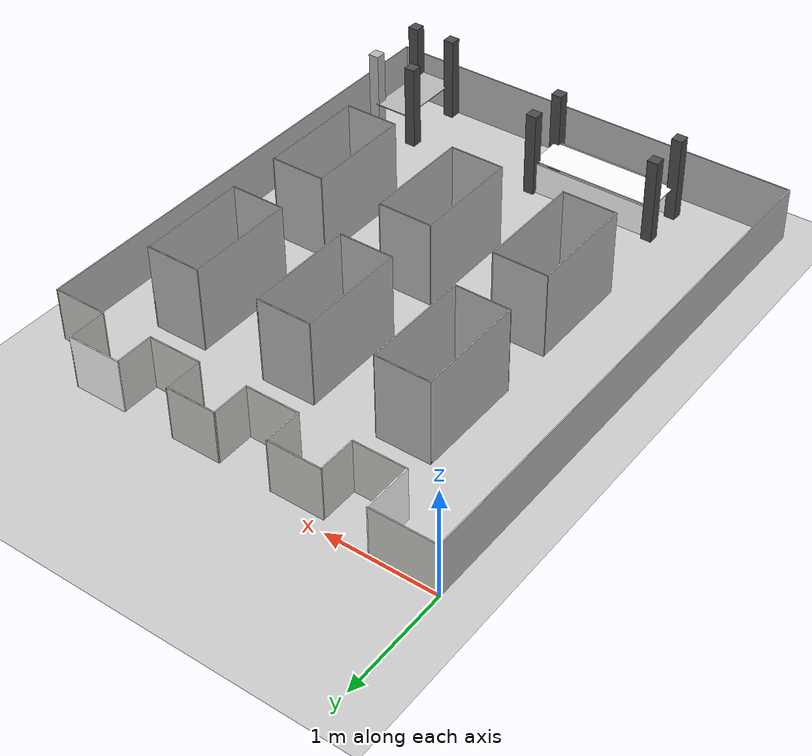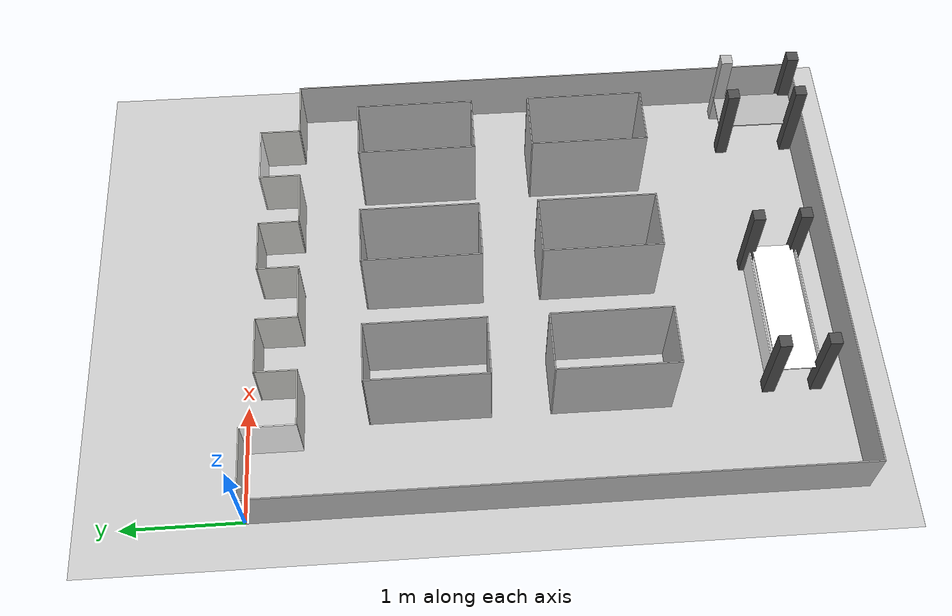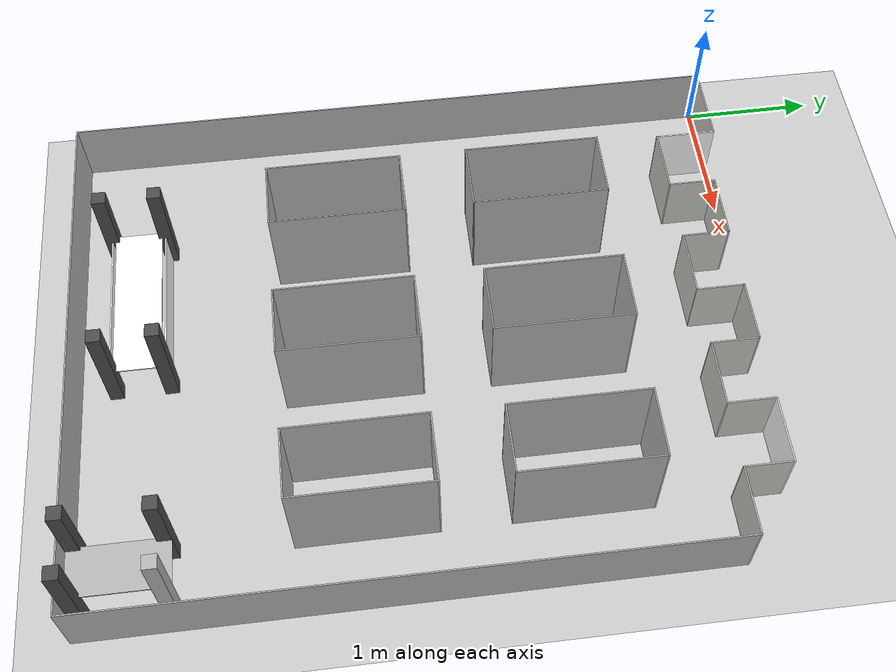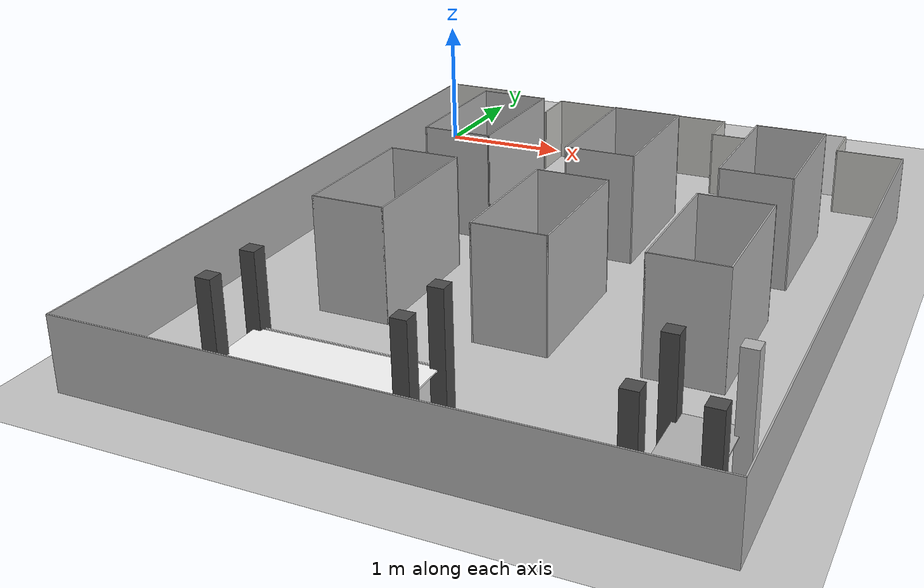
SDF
<?xml version="1.0" encoding="UTF-8"?>
<sdf version='1.4'>
  <world name='default'>
    <!-- A global light source -->
    <include>
      <uri>model://sun</uri>
    </include>

    <!-- A ground plane -->
    <include>
      <uri>model://ground_plane</uri>
    </include>

    <physics type="ode">
      <real_time_update_rate>1000.0</real_time_update_rate>
      <max_step_size>0.001</max_step_size>
      <real_time_factor>1</real_time_factor>
      <ode>
        <solver>
          <type>quick</type>
          <iters>150</iters>
          <precon_iters>0</precon_iters>
          <sor>1.400000</sor>
          <use_dynamic_moi_rescaling>1</use_dynamic_moi_rescaling>
        </solver>
        <constraints>
          <cfm>0.00001</cfm>
          <erp>0.2</erp>
          <contact_max_correcting_vel>2000.000000</contact_max_correcting_vel>
          <contact_surface_layer>0.01000</contact_surface_layer>
        </constraints>
      </ode>
    </physics>

    <!-- Load world -->
    <include>
      <uri>model://tgw_arena</uri>
    </include>

    <scene>
      <ambient>0.5 0.5 0.5 1</ambient>
      <background>0.5 0.5 0.5 1</background>
      <shadows>false</shadows>
    </scene>

    <gui fullscreen='0'>
      <camera name='user_camera'>
        <pose>0.8 0.0 12.0 0 1.5708 0</pose>
        <view_controller>orbit</view_controller>
      </camera>
    </gui>
  </world>
</sdf>

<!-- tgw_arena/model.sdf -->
<sdf version='1.6'>
  <model name='tgw_arena'>
    <pose frame=''>2.03 -2.53248 0 0 -0 0</pose>
    <link name='Wall_20'>
      <collision name='Wall_20_Collision'>
        <geometry>
          <box>
            <size>5.005 0.01 0.5</size>
          </box>
        </geometry>
        <pose frame=''>0 0 0.25 0 -0 0</pose>
      </collision>
      <visual name='Wall_20_Visual'>
        <cast_shadows>false</cast_shadows>
        <pose frame=''>0 0 0.25 0 -0 0</pose>
        <geometry>
          <box>
            <size>5.005 0.01 0.5</size>
          </box>
        </geometry>
        <material>
          <script>
            <uri>model://tgw_arena/materials/scripts</uri>
            <uri>model://tgw_arena/materials/textures</uri>
            <name>tgw_logo</name>
          </script>
        </material>
        <meta>
          <layer>0</layer>
        </meta>
      </visual>
      <pose frame=''>-2.03 0.034982 0 0 -0 -1.5708</pose>
    </link>
    <link name='Wall_27'>
      <collision name='Wall_27_Collision'>
        <geometry>
          <box>
            <size>4 0.01 0.5</size>
          </box>
        </geometry>
        <pose frame=''>0 0 0.25 0 -0 0</pose>
      </collision>
      <visual name='Wall_27_Visual'>
        <cast_shadows>false</cast_shadows>
        <pose frame=''>0 0 0.25 0 -0 0</pose>
        <geometry>
          <box>
            <size>4 0.01 0.5</size>
          </box>
        </geometry>
        <material>
          <script>
            <uri>model://tgw_arena/materials/scripts</uri>
            <uri>model://tgw_arena/materials/textures</uri>
            <name>tgw_logo</name>
          </script>
        </material>
        <meta>
          <layer>0</layer>
        </meta>
      </visual>
      <pose frame=''>-0.035 -2.46252 0 0 -0 0</pose>
    </link>
    <link name='Wall_29'>
      <collision name='Wall_29_Collision'>
        <geometry>
          <box>
            <size>4.551 0.01 0.5</size>
          </box>
        </geometry>
        <pose frame=''>0 0 0.25 0 -0 0</pose>
      </collision>
      <visual name='Wall_29_Visual'>
        <pose frame=''>0 0 0.25 0 -0 0</pose>
        <geometry>
          <box>
            <size>4.551 0.01 0.5</size>
          </box>
        </geometry>
        <material>
          <script>
            <uri>model://tgw_arena/materials/scripts</uri>
            <uri>model://tgw_arena/materials/textures</uri>
            <name>tgw_logo</name>
          </script>
        </material>
        <meta>
          <layer>0</layer>
        </meta>
      </visual>
      <pose frame=''>1.96 -0.192018 0 0 -0 1.5708</pose>
    </link>
    <link name='Wall_30'>
      <collision name='Wall_30_Collision'>
        <geometry>
          <box>
            <size>0.5 0.01 0.5</size>
          </box>
        </geometry>
        <pose frame=''>0 0 0.25 0 -0 0</pose>
      </collision>
      <visual name='Wall_30_Visual'>
        <pose frame=''>0 0 0.25 0 -0 0</pose>
        <geometry>
          <box>
            <size>0.5 0.01 0.5</size>
          </box>
        </geometry>
        <material>
          <script>
            <uri>file://media/materials/scripts/gazebo.material</uri>
            <name>Gazebo/CeilingTiled</name>
          </script>
          <ambient>1 1 1 1</ambient>
        </material>
        <meta>
          <layer>0</layer>
        </meta>
      </visual>
      <pose frame=''>1.715 2.07848 0 0 -0 3.14159</pose>
    </link>
    <link name='Wall_31'>
      <collision name='Wall_31_Collision'>
        <geometry>
          <box>
            <size>0.36 0.01 0.5</size>
          </box>
        </geometry>
        <pose frame=''>0 0 0.25 0 -0 0</pose>
      </collision>
      <visual name='Wall_31_Visual'>
        <pose frame=''>0 0 0.25 0 -0 0</pose>
        <geometry>
          <box>
            <size>0.36 0.01 0.5</size>
          </box>
        </geometry>
        <material>
          <script>
            <uri>file://media/materials/scripts/gazebo.material</uri>
            <name>Gazebo/CeilingTiled</name>
          </script>
          <ambient>1 1 1 1</ambient>
        </material>
        <meta>
          <layer>0</layer>
        </meta>
      </visual>
      <pose frame=''>1.47 2.25348 0 0 -0 1.5708</pose>
    </link>
    <link name='Wareneingang_3'>
      <collision name='Wareneingang_3_Collision'>
        <geometry>
          <box>
            <size>0.5 0.01 0.5</size>
          </box>
        </geometry>
        <pose frame=''>0 0 0.25 0 -0 0</pose>
      </collision>
      <visual name='Wareneingang_3_Visual'>
        <pose frame=''>0 0 0.25 0 -0 0</pose>
        <geometry>
          <box>
            <size>0.5 0.01 0.5</size>
          </box>
        </geometry>
        <material>
          <script>
            <uri>model://tgw_arena/materials/scripts</uri>
            <uri>model://tgw_arena/materials/textures</uri>
            <name>wareneingang3</name>
          </script>
          <ambient>1 1 1 1</ambient>
        </material>
        <meta>
          <layer>0</layer>
        </meta>
      </visual>
      <pose frame=''>1.225 2.42848 0 0 -0 3.14159</pose>
    </link>
    <link name='Wall_33'>
      <collision name='Wall_33_Collision'>
        <geometry>
          <box>
            <size>0.36 0.01 0.5</size>
          </box>
        </geometry>
        <pose frame=''>0 0 0.25 0 -0 0</pose>
      </collision>
      <visual name='Wall_33_Visual'>
        <pose frame=''>0 0 0.25 0 -0 0</pose>
        <geometry>
          <box>
            <size>0.36 0.01 0.5</size>
          </box>
        </geometry>
        <material>
          <script>
            <uri>file://media/materials/scripts/gazebo.material</uri>
            <name>Gazebo/CeilingTiled</name>
          </script>
          <ambient>1 1 1 1</ambient>
        </material>
        <meta>
          <layer>0</layer>
        </meta>
      </visual>
      <pose frame=''>0.98 2.25348 0 0 -0 -1.5708</pose>
    </link>
    <link name='Wall_34'>
      <collision name='Wall_34_Collision'>
        <geometry>
          <box>
            <size>0.5 0.01 0.5</size>
          </box>
        </geometry>
        <pose frame=''>0 0 0.25 0 -0 0</pose>
      </collision>
      <visual name='Wall_34_Visual'>
        <pose frame=''>0 0 0.25 0 -0 0</pose>
        <geometry>
          <box>
            <size>0.5 0.01 0.5</size>
          </box>
        </geometry>
        <material>
          <script>
            <uri>file://media/materials/scripts/gazebo.material</uri>
            <name>Gazebo/CeilingTiled</name>
          </script>
          <ambient>1 1 1 1</ambient>
        </material>
        <meta>
          <layer>0</layer>
        </meta>
      </visual>
      <pose frame=''>0.735 2.07848 0 0 -0 3.14159</pose>
    </link>
    <link name='Wall_36'>
      <collision name='Wall_36_Collision'>
        <geometry>
          <box>
            <size>0.469 0.01 0.5</size>
          </box>
        </geometry>
        <pose frame=''>0 0 0.25 0 -0 0</pose>
      </collision>
      <visual name='Wall_36_Visual'>
        <pose frame=''>0 0 0.25 0 -0 0</pose>
        <geometry>
          <box>
            <size>0.469 0.01 0.5</size>
          </box>
        </geometry>
        <material>
          <script>
            <uri>file://media/materials/scripts/gazebo.material</uri>
            <name>Gazebo/CeilingTiled</name>
          </script>
          <ambient>1 1 1 1</ambient>
        </material>
        <meta>
          <layer>0</layer>
        </meta>
      </visual>
      <pose frame=''>0.2605 2.42848 0 0 -0 0</pose>
    </link>
    <link name='Wall_38'>
      <collision name='Wall_38_Collision'>
        <geometry>
          <box>
            <size>0.498065 0.01 0.5</size>
          </box>
        </geometry>
        <pose frame=''>0 0 0.25 0 -0 0</pose>
      </collision>
      <visual name='Wall_38_Visual'>
        <pose frame=''>0 0 0.25 0 -0 0</pose>
        <geometry>
          <box>
            <size>0.498065 0.01 0.5</size>
          </box>
        </geometry>
        <material>
          <script>
            <uri>file://media/materials/scripts/gazebo.material</uri>
            <name>Gazebo/CeilingTiled</name>
          </script>
          <ambient>1 1 1 1</ambient>
        </material>
        <meta>
          <layer>0</layer>
        </meta>
      </visual>
      <pose frame=''>-0.2135 2.07898 0 0 -0 3.13955</pose>
    </link>
    <link name='Wall_39'>
      <collision name='Wall_39_Collision'>
        <geometry>
          <box>
            <size>0.36 0.01 0.5</size>
          </box>
        </geometry>
        <pose frame=''>0 0 0.25 0 -0 0</pose>
      </collision>
      <visual name='Wall_39_Visual'>
        <pose frame=''>0 0 0.25 0 -0 0</pose>
        <geometry>
          <box>
            <size>0.36 0.01 0.5</size>
          </box>
        </geometry>
        <material>
          <script>
            <uri>file://media/materials/scripts/gazebo.material</uri>
            <name>Gazebo/CeilingTiled</name>
          </script>
          <ambient>1 1 1 1</ambient>
        </material>
        <meta>
          <layer>0</layer>
        </meta>
      </visual>
      <pose frame=''>-0.458 2.25448 0 0 -0 1.5708</pose>
    </link>
    <link name='Wall_40'>
      <collision name='Wall_40_Collision'>
        <geometry>
          <box>
            <size>0.5 0.01 0.5</size>
          </box>
        </geometry>
        <pose frame=''>0 0 0.25 0 -0 0</pose>
      </collision>
      <visual name='Wall_40_Visual'>
        <pose frame=''>0 0 0.25 0 -0 0</pose>
        <geometry>
          <box>
            <size>0.5 0.01 0.5</size>
          </box>
        </geometry>
        <material>
          <script>
            <uri>file://media/materials/scripts/gazebo.material</uri>
            <name>Gazebo/CeilingTiled</name>
          </script>
          <ambient>1 1 1 1</ambient>
        </material>
        <meta>
          <layer>0</layer>
        </meta>
      </visual>
      <pose frame=''>-0.703 2.42948 0 0 -0 3.14159</pose>
    </link>
    <link name='Wall_41'>
      <collision name='Wall_41_Collision'>
        <geometry>
          <box>
            <size>0.36 0.01 0.5</size>
          </box>
        </geometry>
        <pose frame=''>0 0 0.25 0 -0 0</pose>
      </collision>
      <visual name='Wall_41_Visual'>
        <pose frame=''>0 0 0.25 0 -0 0</pose>
        <geometry>
          <box>
            <size>0.36 0.01 0.5</size>
          </box>
        </geometry>
        <material>
          <script>
            <uri>file://media/materials/scripts/gazebo.material</uri>
            <name>Gazebo/CeilingTiled</name>
          </script>
          <ambient>1 1 1 1</ambient>
        </material>
        <meta>
          <layer>0</layer>
        </meta>
      </visual>
      <pose frame=''>-0.948 2.25448 0 0 -0 -1.5708</pose>
    </link>
    <link name='Wall_42'>
      <collision name='Wall_42_Collision'>
        <geometry>
          <box>
            <size>0.492 0.01 0.5</size>
          </box>
        </geometry>
        <pose frame=''>0 0 0.25 0 -0 0</pose>
      </collision>
      <visual name='Wall_42_Visual'>
        <pose frame=''>0 0 0.25 0 -0 0</pose>
        <geometry>
          <box>
            <size>0.492 0.01 0.5</size>
          </box>
        </geometry>
        <material>
          <script>
            <uri>file://media/materials/scripts/gazebo.material</uri>
            <name>Gazebo/CeilingTiled</name>
          </script>
          <ambient>1 1 1 1</ambient>
        </material>
        <meta>
          <layer>0</layer>
        </meta>
      </visual>
      <pose frame=''>-1.189 2.07948 0 0 -0 3.14159</pose>
    </link>
    <link name='Wall_57'>
      <collision name='Wall_57_Collision'>
        <geometry>
          <box>
            <size>0.51 0.01 0.8</size>
          </box>
        </geometry>
        <pose frame=''>0 0 0.4 0 -0 0</pose>
      </collision>
      <visual name='Wall_57_Visual'>
        <pose frame=''>0 0 0.4 0 -0 0</pose>
        <geometry>
          <box>
            <size>0.51 0.01 0.8</size>
          </box>
        </geometry>
        <material>
          <script>
            <uri>model://tgw_arena/materials/scripts</uri>
            <uri>model://tgw_arena/materials/textures</uri>
            <name>regal_boxen</name>
          </script>
        </material>
        <meta>
          <layer>0</layer>
        </meta>
      </visual>
      <pose frame=''>-0.98 1.53346 0 0 -0 -0.003921</pose>
    </link>
    <link name='Wall_58'>
      <collision name='Wall_58_Collision'>
        <geometry>
          <box>
            <size>1.01 0.01 0.8</size>
          </box>
        </geometry>
        <pose frame=''>0 0 0.4 0 -0 0</pose>
      </collision>
      <visual name='Wall_58_Visual'>
        <pose frame=''>0 0 0.4 0 -0 0</pose>
        <geometry>
          <box>
            <size>1.01 0.01 0.8</size>
          </box>
        </geometry>
        <material>
          <script>
            <uri>model://tgw_arena/materials/scripts</uri>
            <uri>model://tgw_arena/materials/textures</uri>
            <name>regal_boxen</name>
          </script>
        </material>
        <meta>
          <layer>0</layer>
        </meta>
      </visual>
      <pose frame=''>-0.73 1.03248 0 0 -0 -1.5708</pose>
    </link>
    <link name='Wall_59'>
      <collision name='Wall_59_Collision'>
        <geometry>
          <box>
            <size>0.51 0.01 0.8</size>
          </box>
        </geometry>
        <pose frame=''>0 0 0.4 0 -0 0</pose>
      </collision>
      <visual name='Wall_59_Visual'>
        <pose frame=''>0 0 0.4 0 -0 0</pose>
        <geometry>
          <box>
            <size>0.51 0.01 0.8</size>
          </box>
        </geometry>
        <material>
          <script>
            <uri>model://tgw_arena/materials/scripts</uri>
            <uri>model://tgw_arena/materials/textures</uri>
            <name>regal_boxen</name>
          </script>
        </material>
        <meta>
          <layer>0</layer>
        </meta>
      </visual>
      <pose frame=''>-0.98 0.533462 0 0 -0 3.13767</pose>
    </link>
    <link name='Wall_60'>
      <collision name='Wall_60_Collision'>
        <geometry>
          <box>
            <size>1.01 0.01 0.8</size>
          </box>
        </geometry>
        <pose frame=''>0 0 0.4 0 -0 0</pose>
      </collision>
      <visual name='Wall_60_Visual'>
        <pose frame=''>0 0 0.4 0 -0 0</pose>
        <geometry>
          <box>
            <size>1.01 0.01 0.8</size>
          </box>
        </geometry>
        <material>
          <script>
            <uri>model://tgw_arena/materials/scripts</uri>
            <uri>model://tgw_arena/materials/textures</uri>
            <name>regal_boxen</name>
          </script>
        </material>
        <meta>
          <layer>0</layer>
        </meta>
      </visual>
      <pose frame=''>-1.23 1.03346 0 0 -0 1.5708</pose>
    </link>
    <link name='Wall_62'>
      <collision name='Wall_62_Collision'>
        <geometry>
          <box>
            <size>1.01 0.01 0.8</size>
          </box>
        </geometry>
        <pose frame=''>0 0 0.4 0 -0 0</pose>
      </collision>
      <visual name='Wall_62_Visual'>
        <pose frame=''>0 0 0.4 0 -0 0</pose>
        <geometry>
          <box>
            <size>1.01 0.01 0.8</size>
          </box>
        </geometry>
        <material>
          <script>
            <uri>model://tgw_arena/materials/scripts</uri>
            <uri>model://tgw_arena/materials/textures</uri>
            <name>regal_boxen</name>
          </script>
        </material>
        <meta>
          <layer>0</layer>
        </meta>
      </visual>
      <pose frame=''>-0.13 1.03248 0 0 -0 -1.5708</pose>
    </link>
    <link name='Wall_63'>
      <collision name='Wall_63_Collision'>
        <geometry>
          <box>
            <size>0.51 0.01 0.8</size>
          </box>
        </geometry>
        <pose frame=''>0 0 0.4 0 -0 0</pose>
      </collision>
      <visual name='Wall_63_Visual'>
        <pose frame=''>0 0 0.4 0 -0 0</pose>
        <geometry>
          <box>
            <size>0.51 0.01 0.8</size>
          </box>
        </geometry>
        <material>
          <script>
            <uri>model://tgw_arena/materials/scripts</uri>
            <uri>model://tgw_arena/materials/textures</uri>
            <name>regal_boxen</name>
          </script>
        </material>
        <meta>
          <layer>0</layer>
        </meta>
      </visual>
      <pose frame=''>0.12 0.532482 0 0 -0 0</pose>
    </link>
    <link name='Wall_64'>
      <collision name='Wall_64_Collision'>
        <geometry>
          <box>
            <size>1.01 0.01 0.8</size>
          </box>
        </geometry>
        <pose frame=''>0 0 0.4 0 -0 0</pose>
      </collision>
      <visual name='Wall_64_Visual'>
        <pose frame=''>0 0 0.4 0 -0 0</pose>
        <geometry>
          <box>
            <size>1.01 0.01 0.8</size>
          </box>
        </geometry>
        <material>
          <script>
            <uri>model://tgw_arena/materials/scripts</uri>
            <uri>model://tgw_arena/materials/textures</uri>
            <name>regal_boxen</name>
          </script>
        </material>
        <meta>
          <layer>0</layer>
        </meta>
      </visual>
      <pose frame=''>0.37 1.03248 0 0 -0 1.5708</pose>
    </link>
    <link name='Wall_65'>
      <collision name='Wall_65_Collision'>
        <geometry>
          <box>
            <size>0.51 0.01 0.8</size>
          </box>
        </geometry>
        <pose frame=''>0 0 0.4 0 -0 0</pose>
      </collision>
      <visual name='Wall_65_Visual'>
        <pose frame=''>0 0 0.4 0 -0 0</pose>
        <geometry>
          <box>
            <size>0.51 0.01 0.8</size>
          </box>
        </geometry>
        <material>
          <script>
            <uri>model://tgw_arena/materials/scripts</uri>
            <uri>model://tgw_arena/materials/textures</uri>
            <name>regal_boxen</name>
          </script>
        </material>
        <meta>
          <layer>0</layer>
        </meta>
      </visual>
      <pose frame=''>0.12 1.53248 0 0 -0 3.14159</pose>
    </link>
    <link name='Wall_71'>
      <collision name='Wall_71_Collision'>
        <geometry>
          <box>
            <size>1.01 0.01 0.8</size>
          </box>
        </geometry>
        <pose frame=''>0 0 0.4 0 -0 0</pose>
      </collision>
      <visual name='Wall_71_Visual'>
        <pose frame=''>0 0 0.4 0 -0 0</pose>
        <geometry>
          <box>
            <size>1.01 0.01 0.8</size>
          </box>
        </geometry>
         <material>
          <script>
            <uri>model://tgw_arena/materials/scripts</uri>
            <uri>model://tgw_arena/materials/textures</uri>
            <name>regal_boxen</name>
          </script>
        </material>
        <meta>
          <layer>0</layer>
        </meta>
      </visual>
      <pose frame=''>0.97 1.03248 0 0 -0 -1.5708</pose>
    </link>
    <link name='Wall_72'>
      <collision name='Wall_72_Collision'>
        <geometry>
          <box>
            <size>0.51 0.01 0.8</size>
          </box>
        </geometry>
        <pose frame=''>0 0 0.4 0 -0 0</pose>
      </collision>
      <visual name='Wall_72_Visual'>
        <pose frame=''>0 0 0.4 0 -0 0</pose>
        <geometry>
          <box>
            <size>0.51 0.01 0.8</size>
          </box>
        </geometry>
        <material>
          <script>
            <uri>model://tgw_arena/materials/scripts</uri>
            <uri>model://tgw_arena/materials/textures</uri>
            <name>regal_boxen</name>
          </script>
        </material>
        <meta>
          <layer>0</layer>
        </meta>
      </visual>
      <pose frame=''>1.22 0.532482 0 0 -0 0</pose>
    </link>
    <link name='Wall_73'>
      <collision name='Wall_73_Collision'>
        <geometry>
          <box>
            <size>1.01 0.01 0.8</size>
          </box>
        </geometry>
        <pose frame=''>0 0 0.4 0 -0 0</pose>
      </collision>
      <visual name='Wall_73_Visual'>
        <pose frame=''>0 0 0.4 0 -0 0</pose>
        <geometry>
          <box>
            <size>1.01 0.01 0.8</size>
          </box>
        </geometry>
        <material>
          <script>
            <uri>model://tgw_arena/materials/scripts</uri>
            <uri>model://tgw_arena/materials/textures</uri>
            <name>regal_boxen</name>
          </script>
        </material>
        <meta>
          <layer>0</layer>
        </meta>
      </visual>
      <pose frame=''>1.47 1.03248 0 0 -0 1.5708</pose>
    </link>
    <link name='Wall_74'>
      <collision name='Wall_74_Collision'>
        <geometry>
          <box>
            <size>0.51 0.01 0.8</size>
          </box>
        </geometry>
        <pose frame=''>0 0 0.4 0 -0 0</pose>
      </collision>
      <visual name='Wall_74_Visual'>
        <pose frame=''>0 0 0.4 0 -0 0</pose>
        <geometry>
          <box>
            <size>0.51 0.01 0.8</size>
          </box>
        </geometry>
        <material>
          <script>
            <uri>model://tgw_arena/materials/scripts</uri>
            <uri>model://tgw_arena/materials/textures</uri>
            <name>regal_boxen</name>
          </script>
        </material>
        <meta>
          <layer>0</layer>
        </meta>
      </visual>
      <pose frame=''>1.22 1.53248 0 0 -0 3.14159</pose>
    </link>
    <link name='Wall_76'>
      <collision name='Wall_76_Collision'>
        <geometry>
          <box>
            <size>1.01 0.01 0.8</size>
          </box>
        </geometry>
        <pose frame=''>0 0 0.4 0 -0 0</pose>
      </collision>
      <visual name='Wall_76_Visual'>
        <pose frame=''>0 0 0.4 0 -0 0</pose>
        <geometry>
          <box>
            <size>1.01 0.01 0.8</size>
          </box>
        </geometry>
        <material>
          <script>
            <uri>model://tgw_arena/materials/scripts</uri>
            <uri>model://tgw_arena/materials/textures</uri>
            <name>regal_boxen</name>
          </script>
        </material>
        <meta>
          <layer>0</layer>
        </meta>
      </visual>
      <pose frame=''>-1.23 -0.467518 0 0 -0 -1.5708</pose>
    </link>
    <link name='Wall_77'>
      <collision name='Wall_77_Collision'>
        <geometry>
          <box>
            <size>0.51 0.01 0.8</size>
          </box>
        </geometry>
        <pose frame=''>0 0 0.4 0 -0 0</pose>
      </collision>
      <visual name='Wall_77_Visual'>
        <pose frame=''>0 0 0.4 0 -0 0</pose>
        <geometry>
          <box>
            <size>0.51 0.01 0.8</size>
          </box>
        </geometry>
        <material>
          <script>
            <uri>model://tgw_arena/materials/scripts</uri>
            <uri>model://tgw_arena/materials/textures</uri>
            <name>regal_boxen</name>
          </script>
        </material>
        <meta>
          <layer>0</layer>
        </meta>
      </visual>
      <pose frame=''>-0.98 -0.967518 0 0 -0 0</pose>
    </link>
    <link name='Wall_78'>
      <collision name='Wall_78_Collision'>
        <geometry>
          <box>
            <size>1.01 0.01 0.8</size>
          </box>
        </geometry>
        <pose frame=''>0 0 0.4 0 -0 0</pose>
      </collision>
      <visual name='Wall_78_Visual'>
        <pose frame=''>0 0 0.4 0 -0 0</pose>
        <geometry>
          <box>
            <size>1.01 0.01 0.8</size>
          </box>
        </geometry>
        <material>
          <script>
            <uri>model://tgw_arena/materials/scripts</uri>
            <uri>model://tgw_arena/materials/textures</uri>
            <name>regal_boxen</name>
          </script>
        </material>
        <meta>
          <layer>0</layer>
        </meta>
      </visual>
      <pose frame=''>-0.73 -0.467518 0 0 -0 1.5708</pose>
    </link>
    <link name='Wall_79'>
      <collision name='Wall_79_Collision'>
        <geometry>
          <box>
            <size>0.51 0.01 0.8</size>
          </box>
        </geometry>
        <pose frame=''>0 0 0.4 0 -0 0</pose>
      </collision>
      <visual name='Wall_79_Visual'>
        <pose frame=''>0 0 0.4 0 -0 0</pose>
        <geometry>
          <box>
            <size>0.51 0.01 0.8</size>
          </box>
        </geometry>
        <material>
          <script>
            <uri>model://tgw_arena/materials/scripts</uri>
            <uri>model://tgw_arena/materials/textures</uri>
            <name>regal_boxen</name>
          </script>
        </material>
        <meta>
          <layer>0</layer>
        </meta>
      </visual>
      <pose frame=''>-0.98 0.032482 0 0 -0 3.14159</pose>
    </link>
    <link name='Wall_81'>
      <collision name='Wall_81_Collision'>
        <geometry>
          <box>
            <size>1.01 0.01 0.8</size>
          </box>
        </geometry>
        <pose frame=''>0 0 0.4 0 -0 0</pose>
      </collision>
      <visual name='Wall_81_Visual'>
        <pose frame=''>0 0 0.4 0 -0 0</pose>
        <geometry>
          <box>
            <size>1.01 0.01 0.8</size>
          </box>
        </geometry>
        <material>
          <script>
            <uri>model://tgw_arena/materials/scripts</uri>
            <uri>model://tgw_arena/materials/textures</uri>
            <name>regal_boxen</name>
          </script>
        </material>
        <meta>
          <layer>0</layer>
        </meta>
      </visual>
      <pose frame=''>-0.13 -0.467518 0 0 -0 -1.5708</pose>
    </link>
    <link name='Wall_82'>
      <collision name='Wall_82_Collision'>
        <geometry>
          <box>
            <size>0.51 0.01 0.8</size>
          </box>
        </geometry>
        <pose frame=''>0 0 0.4 0 -0 0</pose>
      </collision>
      <visual name='Wall_82_Visual'>
        <pose frame=''>0 0 0.4 0 -0 0</pose>
        <geometry>
          <box>
            <size>0.51 0.01 0.8</size>
          </box>
        </geometry>
        <material>
          <script>
            <uri>model://tgw_arena/materials/scripts</uri>
            <uri>model://tgw_arena/materials/textures</uri>
            <name>regal_boxen</name>
          </script>
        </material>
        <meta>
          <layer>0</layer>
        </meta>
      </visual>
      <pose frame=''>0.12 -0.967518 0 0 -0 0</pose>
    </link>
    <link name='Wall_83'>
      <collision name='Wall_83_Collision'>
        <geometry>
          <box>
            <size>1.01 0.01 0.8</size>
          </box>
        </geometry>
        <pose frame=''>0 0 0.4 0 -0 0</pose>
      </collision>
      <visual name='Wall_83_Visual'>
        <pose frame=''>0 0 0.4 0 -0 0</pose>
        <geometry>
          <box>
            <size>1.01 0.01 0.8</size>
          </box>
        </geometry>
        <material>
          <script>
            <uri>model://tgw_arena/materials/scripts</uri>
            <uri>model://tgw_arena/materials/textures</uri>
            <name>regal_boxen</name>
          </script>
        </material>
        <meta>
          <layer>0</layer>
        </meta>
      </visual>
      <pose frame=''>0.37 -0.467518 0 0 -0 1.5708</pose>
    </link>
    <link name='Wall_84'>
      <collision name='Wall_84_Collision'>
        <geometry>
          <box>
            <size>0.51 0.01 0.8</size>
          </box>
        </geometry>
        <pose frame=''>0 0 0.4 0 -0 0</pose>
      </collision>
      <visual name='Wall_84_Visual'>
        <pose frame=''>0 0 0.4 0 -0 0</pose>
        <geometry>
          <box>
            <size>0.51 0.01 0.8</size>
          </box>
        </geometry>
        <material>
          <script>
            <uri>model://tgw_arena/materials/scripts</uri>
            <uri>model://tgw_arena/materials/textures</uri>
            <name>regal_boxen</name>
          </script>
        </material>
        <meta>
          <layer>0</layer>
        </meta>
      </visual>
      <pose frame=''>0.12 0.032482 0 0 -0 3.14159</pose>
    </link>
    <link name='Wall_86'>
      <collision name='Wall_86_Collision'>
        <geometry>
          <box>
            <size>1.01 0.01 0.8</size>
          </box>
        </geometry>
        <pose frame=''>0 0 0.4 0 -0 0</pose>
      </collision>
      <visual name='Wall_86_Visual'>
        <pose frame=''>0 0 0.4 0 -0 0</pose>
        <geometry>
          <box>
            <size>1.01 0.01 0.8</size>
          </box>
        </geometry>
        <material>
          <script>
            <uri>model://tgw_arena/materials/scripts</uri>
            <uri>model://tgw_arena/materials/textures</uri>
            <name>regal_boxen</name>
          </script>
        </material>
        <meta>
          <layer>0</layer>
        </meta>
      </visual>
      <pose frame=''>0.97 -0.467518 0 0 -0 -1.5708</pose>
    </link>
    <link name='Wall_87'>
      <collision name='Wall_87_Collision'>
        <geometry>
          <box>
            <size>0.51 0.01 0.8</size>
          </box>
        </geometry>
        <pose frame=''>0 0 0.4 0 -0 0</pose>
      </collision>
      <visual name='Wall_87_Visual'>
        <pose frame=''>0 0 0.4 0 -0 0</pose>
        <geometry>
          <box>
            <size>0.51 0.01 0.8</size>
          </box>
        </geometry>
        <material>
          <script>
            <uri>model://tgw_arena/materials/scripts</uri>
            <uri>model://tgw_arena/materials/textures</uri>
            <name>regal_boxen</name>
          </script>
        </material>
        <meta>
          <layer>0</layer>
        </meta>
      </visual>
      <pose frame=''>1.22 -0.967518 0 0 -0 0</pose>
    </link>
    <link name='Wall_88'>
      <collision name='Wall_88_Collision'>
        <geometry>
          <box>
            <size>1.01 0.01 0.8</size>
          </box>
        </geometry>
        <pose frame=''>0 0 0.4 0 -0 0</pose>
      </collision>
      <visual name='Wall_88_Visual'>
        <pose frame=''>0 0 0.4 0 -0 0</pose>
        <geometry>
          <box>
            <size>1.01 0.01 0.8</size>
          </box>
        </geometry>
        <material>
          <script>
            <uri>model://tgw_arena/materials/scripts</uri>
            <uri>model://tgw_arena/materials/textures</uri>
            <name>regal_boxen</name>
          </script>
        </material>
        <meta>
          <layer>0</layer>
        </meta>
      </visual>
      <pose frame=''>1.47 -0.467518 0 0 -0 1.5708</pose>
    </link>
    <link name='Wall_89'>
      <collision name='Wall_89_Collision'>
        <geometry>
          <box>
            <size>0.51 0.01 0.8</size>
          </box>
        </geometry>
        <pose frame=''>0 0 0.4 0 -0 0</pose>
      </collision>
      <visual name='Wall_89_Visual'>
        <pose frame=''>0 0 0.4 0 -0 0</pose>
        <geometry>
          <box>
            <size>0.51 0.01 0.8</size>
          </box>
        </geometry>
        <material>
          <script>
            <uri>model://tgw_arena/materials/scripts</uri>
            <uri>model://tgw_arena/materials/textures</uri>
            <name>regal_boxen</name>
          </script>
        </material>
        <meta>
          <layer>0</layer>
        </meta>
      </visual>
      <pose frame=''>1.22 0.032482 0 0 -0 3.14159</pose>
    </link>
    <link name='Wall_93'>
      <collision name='Wall_93_Collision'>
        <geometry>
          <box>
            <size>0.36 0.01 0.5</size>
          </box>
        </geometry>
        <pose frame=''>0 0 0.25 0 -0 0</pose>
      </collision>
      <visual name='Wall_93_Visual'>
        <pose frame=''>0 0 0.25 0 -0 0</pose>
        <geometry>
          <box>
            <size>0.36 0.01 0.5</size>
          </box>
        </geometry>
        <material>
          <script>
            <uri>file://media/materials/scripts/gazebo.material</uri>
            <name>Gazebo/CeilingTiled</name>
          </script>
          <ambient>1 1 1 1</ambient>
        </material>
        <meta>
          <layer>0</layer>
        </meta>
      </visual>
      <pose frame=''>0.49 2.25348 0 0 -0 1.5708</pose>
    </link>
    <link name='Wall_96'>
      <collision name='Wall_96_Collision'>
        <geometry>
          <box>
            <size>0.36 0.01 0.5</size>
          </box>
        </geometry>
        <pose frame=''>0 0 0.25 0 -0 0</pose>
      </collision>
      <visual name='Wall_96_Visual'>
        <pose frame=''>0 0 0.25 0 -0 0</pose>
        <geometry>
          <box>
            <size>0.36 0.01 0.5</size>
          </box>
        </geometry>
        <material>
          <script>
            <uri>file://media/materials/scripts/gazebo.material</uri>
            <name>Gazebo/CeilingTiled</name>
          </script>
          <ambient>1 1 1 1</ambient>
        </material>
        <meta>
          <layer>0</layer>
        </meta>
      </visual>
      <pose frame=''>0.031 2.25348 0 0 -0 -1.5708</pose>
    </link>
    <link name='Wall_98'>
      <collision name='Wall_98_Collision'>
        <geometry>
          <box>
            <size>0.61 0.01 0.5</size>
          </box>
        </geometry>
        <pose frame=''>0 0 0.25 0 -0 0</pose>
      </collision>
      <visual name='Wall_98_Visual'>
        <pose frame=''>0 0 0.25 0 -0 0</pose>
        <geometry>
          <box>
            <size>0.61 0.01 0.5</size>
          </box>
        </geometry>
        <material>
          <script>
            <uri>file://media/materials/scripts/gazebo.material</uri>
            <name>Gazebo/CeilingTiled</name>
          </script>
          <ambient>1 1 1 1</ambient>
        </material>
        <meta>
          <layer>0</layer>
        </meta>
      </visual>
      <pose frame=''>-1.73 2.53248 0 0 -0 0</pose>
    </link>
    <link name='Wall_99'>
      <static>true</static>
      <collision name='Wall_99_Collision'>
        <geometry>
          <box>
            <size>0.463071 0.01 0.5</size>
          </box>
        </geometry>
        <pose frame=''>0 0 0.25 0 -0 0</pose>
      </collision>
      <visual name='Wall_99_Visual'>
        <cast_shadows>false</cast_shadows>
        <pose frame=''>0 0 0.25 0 -0 0</pose>
        <geometry>
          <box>
            <size>0.463071 0.01 0.5</size>
          </box>
        </geometry>
        <material>
          <script>
            <uri>model://tgw_arena/materials/scripts</uri>
            <uri>model://tgw_arena/materials/textures</uri>
            <name>start_qr_code</name>
          </script>
          <ambient>1 1 1 1</ambient>
        </material>
        <meta>
          <layer>0</layer>
        </meta>
      </visual>
      <pose frame=''>-1.43 2.30598 0 0 -0 -1.5708</pose>
    </link>
    <link name='Rolle_gross'>
      <collision name='Rolle_gross_Collision'>
        <pose frame=''>0 0 0.25 0 -0 0</pose>
        <geometry>
          <box>
            <size>1.2 0.35 0.01</size>
          </box>
        </geometry>
        <pose frame=''>0 0 0.2 0 -0 0</pose>
      </collision>
      <visual name='Rolle_gross_Visual'>
        <pose frame=''>0 0 0.3 0 -0 0</pose>
        <geometry>
          <box>
            <size>1.2 0.35 0.01</size>
          </box>
        </geometry>
        <material>
          <script>
            <uri>model://tgw_arena/materials/scripts</uri>
            <uri>model://tgw_arena/materials/textures</uri>
            <name>rolle_gross</name>
          </script>
          <ambient>1 1 1 1</ambient>
        </material>
        <meta>
          <layer>0</layer>
        </meta>
      </visual>
      <pose frame=''>-0.5 -2.0 0 0 0 0</pose>
    </link>
    <link name='Rolle_gross_seite1'>
      <collision name='Rolle_gross_seite1_Collision'>
        <geometry>
          <box>
            <size>1.2 0.01 0.2</size>
          </box>
        </geometry>
        <pose frame=''>0 0 0.0 0 -0 0</pose>
      </collision>
      <visual name='Rolle_gross_seite1_Visual'>
        <pose frame=''>0 0 0 0 -0 0</pose>
        <geometry>
          <box>
            <size>1.2 0.01 0.3</size>
          </box>
        </geometry>
        <material>
          <script>
            <uri>model://tgw_arena/materials/scripts</uri>
            <uri>model://tgw_arena/materials/textures</uri>
            <name>warenausgang1</name>
          </script>
          <ambient>1 1 1 1</ambient>
        </material>
        <meta>
          <layer>0</layer>
        </meta>
      </visual>
      <pose frame=''>-0.5 -2.2 0.15 0 0 0</pose>
    </link>
    <link name='Rolle_gross_seite2'>
      <collision name='Rolle_gross_seite2_Collision'>
        <geometry>
          <box>
            <size>1.2 0.01 0.2</size>
          </box>
        </geometry>
        <pose frame=''>0 0 0.0 0 -0 0</pose>
      </collision>
      <visual name='Rolle_gross_seite2_Visual'>
        <pose frame=''>0 0 0 0 -0 0</pose>
        <geometry>
          <box>
            <size>1.2 0.01 0.3</size>
          </box>
        </geometry>
        <material>
          <script>
            <uri>model://tgw_arena/materials/scripts</uri>
            <uri>model://tgw_arena/materials/textures</uri>
            <name>warenausgang1</name>
          </script>
          <ambient>1 1 1 1</ambient>
        </material>
        <meta>
          <layer>0</layer>
        </meta>
      </visual>
      <pose frame=''>-0.5 -1.8 0.15 0 0 0</pose>
    </link>
    <link name='Rolle_gross_t1'>
      <collision name='Rolle_gross_t1_Collision'>
        <geometry>
          <box>
            <size>0.2 0.2 0.8</size>
          </box>
        </geometry>
        <pose frame=''>0 0 0.0 0 -0 0</pose>
      </collision>
      <visual name='Rolle_gross_t1_Visual'>
        <pose frame=''>0 0 0 0 -0 0</pose>
        <geometry>
          <box>
            <size>0.1 0.1 0.8</size>
          </box>
        </geometry>
        <material>
          <script>
            <uri>file://media/materials/scripts/gazebo.material</uri>
            <name>Gazebo/DarkGrey</name>
          </script>
          <ambient>1 1 1 1</ambient>
        </material>
        <meta>
          <layer>0</layer>
        </meta>
      </visual>
      <pose frame=''>0.1 -2.2 0.4 0 0 0</pose>
    </link>
    <link name='Rolle_gross_t2'>
      <collision name='Rolle_gross_t2_Collision'>
        <geometry>
          <box>
            <size>0.2 0.2 0.8</size>
          </box>
        </geometry>
        <pose frame=''>0 0 0.0 0 -0 0</pose>
      </collision>
      <visual name='Rolle_gross_t2_Visual'>
        <pose frame=''>0 0 0 0 -0 0</pose>
        <geometry>
          <box>
            <size>0.1 0.1 0.8</size>
          </box>
        </geometry>
        <material>
          <script>
            <uri>file://media/materials/scripts/gazebo.material</uri>
            <name>Gazebo/DarkGrey</name>
          </script>
          <ambient>1 1 1 1</ambient>
        </material>
        <meta>
          <layer>0</layer>
        </meta>
      </visual>
      <pose frame=''>0.1 -1.8 0.4 0 0 0</pose>
    </link>
    <link name='Rolle_gross_t3'>
      <collision name='Rolle_gross_t3_Collision'>
        <geometry>
          <box>
            <size>0.2 0.2 0.8</size>
          </box>
        </geometry>
        <pose frame=''>0 0 0.0 0 -0 0</pose>
      </collision>
      <visual name='Rolle_gross_t3_Visual'>
        <pose frame=''>0 0 0 0 0 0</pose>
        <geometry>
          <box>
            <size>0.1 0.1 0.8</size>
          </box>
        </geometry>
        <material>
          <script>
            <uri>file://media/materials/scripts/gazebo.material</uri>
            <name>Gazebo/DarkGrey</name>
          </script>
          <ambient>1 1 1 1</ambient>
        </material>
        <meta>
          <layer>0</layer>
        </meta>
      </visual>
      <pose frame=''>-1.1 -2.2 0.4 0 0 0</pose>
    </link>
    <link name='Rolle_gross_t4'>
      <collision name='Rolle_gross_t4_Collision'>
        <geometry>
          <box>
            <size>0.2 0.2 0.8</size>
          </box>
        </geometry>
        <pose frame=''>0 0 0.0 0 0 0</pose>
      </collision>
      <visual name='Rolle_gross_t4_Visual'>
        <pose frame=''>0 0 0 0 0 0</pose>
        <geometry>
          <box>
            <size>0.1 0.1 0.8</size>
          </box>
        </geometry>
        <material>
          <script>
            <uri>file://media/materials/scripts/gazebo.material</uri>
            <name>Gazebo/DarkGrey</name>
          </script>
          <ambient>1 1 1 1</ambient>
        </material>
        <meta>
          <layer>0</layer>
        </meta>
      </visual>
      <pose frame=''>-1.1 -1.8 0.4 0 0 0</pose>
    </link>
    <link name='Rolle_klein1'>
      <collision name='Rolle_klein1_Collision'>
        <geometry>
          <box>
            <size>0.35 0.7 0.01</size>
          </box>
        </geometry>
        <pose frame=''>0 0 0.2 0 0 0</pose>
      </collision>
      <visual name='Rolle_klein1_Visual'>
        <pose frame=''>0 0 0.3 0 0 0</pose>
        <geometry>
          <box>
            <size>0.35 0.7 0.01</size>
          </box>
        </geometry>
        <material>
          <script>
            <uri>model://tgw_arena/materials/scripts</uri>
            <uri>model://tgw_arena/materials/textures</uri>
            <name>rolle_klein</name>
          </script>
        </material>
        <meta>
          <layer>0</layer>
        </meta>
      </visual>
      <pose frame=''>1.6 -2.1 0 0 0 0</pose>
    </link>
    <link name='Rolle_klein_t1'>
      <collision name='Rolle_klein_t1_Collision'>
        <geometry>
          <box>
            <size>0.2 0.2 0.6</size>
          </box>
        </geometry>
        <pose frame=''>0 0 0.0 0 0 0</pose>
      </collision>
      <visual name='Rolle_klein_t1_Visual'>
        <pose frame=''>0 0 0 0 0 0</pose>
        <geometry>
          <box>
            <size>0.1 0.1 0.8</size>
          </box>
        </geometry>
        <material>
          <script>
            <uri>model://tgw_arena/materials/scripts</uri>
            <uri>model://tgw_arena/materials/textures</uri>
            <name>rolle_klein</name>
          </script>
        </material>
        <meta>
          <layer>0</layer>
        </meta>
      </visual>
      <pose frame=''>1.8 -1.8 0.4 0 0 0</pose>
    </link>
    <link name='Rolle_klein_t2'>
      <collision name='Rolle_klein_t2_Collision'>
        <geometry>
          <box>
            <size>0.2 0.2 0.6</size>
          </box>
        </geometry>
        <pose frame=''>0 0 0.0 0 0 0</pose>
      </collision>
      <visual name='Rolle_klein_t2_Visual'>
        <pose frame=''>0 0 0 0 0 0</pose>
        <geometry>
          <box>
            <size>0.1 0.1 0.8</size>
          </box>
        </geometry>
        <material>
          <script>
            <uri>file://media/materials/scripts/gazebo.material</uri>
            <name>Gazebo/DarkGrey</name>
          </script>
          <ambient>1 1 1 1</ambient>
        </material>
        <meta>
          <layer>0</layer>
        </meta>
      </visual>
      <pose frame=''>1.4 -1.8 0.4 0 0 0</pose>
    </link>
    <link name='Rolle_klein_t3'>
      <collision name='Rolle_klein_t3_Collision'>
        <geometry>
          <box>
            <size>0.2 0.2 0.6</size>
          </box>
        </geometry>
        <pose frame=''>0 0 0.0 0 0 0</pose>
      </collision>
      <visual name='Rolle_klein_t3_Visual'>
        <pose frame=''>0 0 0 0 0 0</pose>
        <geometry>
          <box>
            <size>0.1 0.1 0.8</size>
          </box>
        </geometry>
        <material>
          <script>
            <uri>file://media/materials/scripts/gazebo.material</uri>
            <name>Gazebo/DarkGrey</name>
          </script>
          <ambient>1 1 1 1</ambient>
        </material>
        <meta>
          <layer>0</layer>
        </meta>
      </visual>
      <pose frame=''>1.8 -2.4 0.4 0 0 0</pose>
    </link>
    <link name='Rolle_klein_t4'>
      <collision name='Rolle_klein_t4_Collision'>
        <geometry>
          <box>
            <size>0.2 0.2 0.6</size>
          </box>
        </geometry>
        <pose frame=''>0 0 0.0 0 0 0</pose>
      </collision>
      <visual name='Rolle_klein_t4_Visual'>
        <pose frame=''>0 0 0 0 0 0</pose>
        <geometry>
          <box>
            <size>0.1 0.1 0.8</size>
          </box>
        </geometry>
        <material>
          <script>
            <uri>file://media/materials/scripts/gazebo.material</uri>
            <name>Gazebo/DarkGrey</name>
          </script>
          <ambient>1 1 1 1</ambient>
        </material>
        <meta>
          <layer>0</layer>
        </meta>
      </visual>
      <pose frame=''>1.4 -2.4 0.4 0 0 0</pose>
    </link>
    <static>1</static>
  </model>
</sdf>
